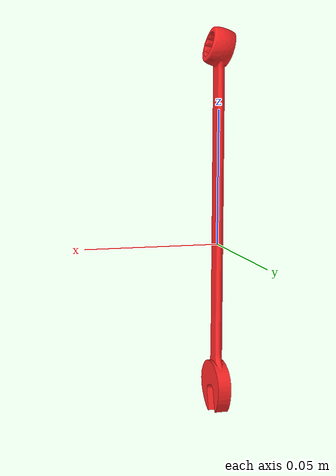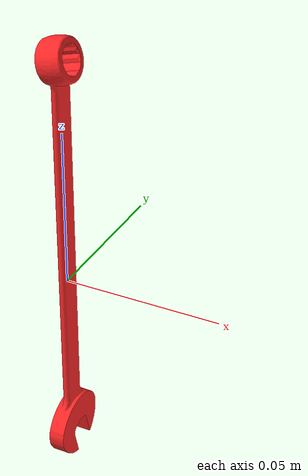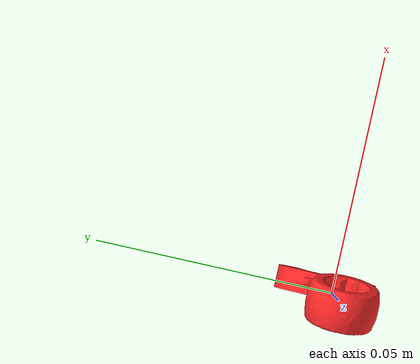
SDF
<?xml version="1.0"?>
<sdf version="1.7">
  <model name="combination_wrench_08mm_bright">
    <pose>0 0 0 0 0 0</pose>
    <static>false</static>
    <link name="link">
      <!-- link frame = tool CoM; Z = long axis (+ toward tool end), X = forward, Y = Z x X -->
      <inertial>
        <pose>0 0 0 0 0 0</pose>
        <mass>0.032054</mass>
        <inertia>
          <ixx>7.722593e-05</ixx>
          <ixy>3.279743e-21</ixy>
          <ixz>-4.257161e-24</ixz>
          <iyy>7.674229e-05</iyy>
          <iyz>5.346818e-23</iyz>
          <izz>6.019387e-07</izz>
        </inertia>
      </inertial>
      <collision name="collision">
        <geometry>
          <mesh>
            <uri>model://combination_wrench_08mm/meshes/combination_wrench_08mm.dae</uri>
          </mesh>
        </geometry>
      </collision>
      <visual name="visual">
        <geometry>
          <mesh>
            <uri>model://combination_wrench_08mm/meshes/combination_wrench_08mm.dae</uri>
          </mesh>
        </geometry>
        <material>
          <ambient>0.450 0.068 0.068 1.0</ambient>
          <diffuse>1.000 0.150 0.150 1.0</diffuse>
          <specular>0.85 0.85 0.85 1.0</specular>
          <emissive>0 0 0 1.0</emissive>
        </material>
      </visual>
    </link>
  </model>
</sdf>
